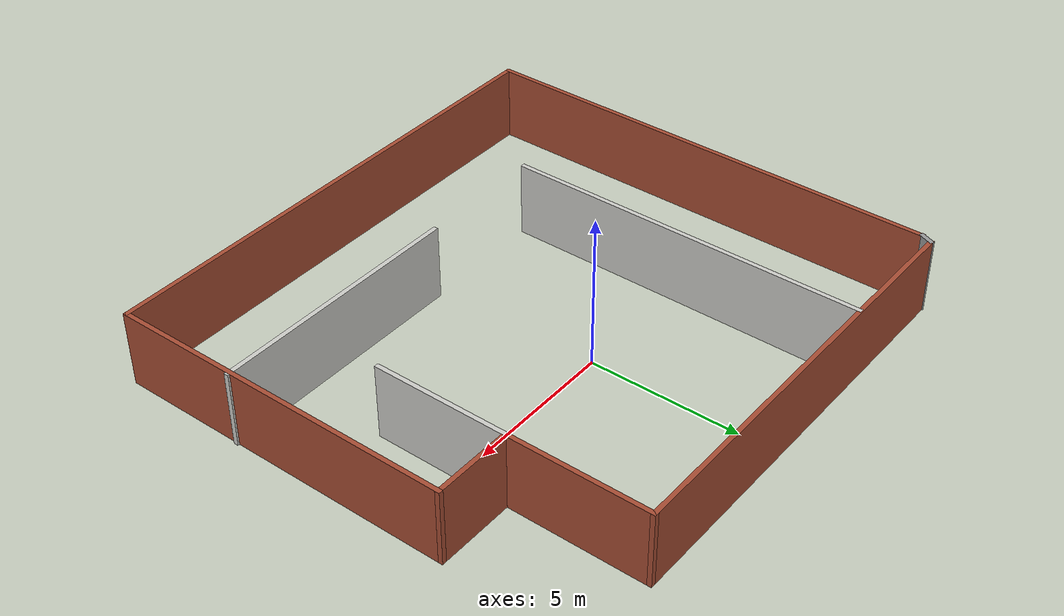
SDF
<?xml version='1.0'?>
<sdf version='1.6'>
  <model name='gcamp_small_building'>
    <pose frame=''>0.222583 -1.69696 0 0 -0 0</pose>
    <link name='Wall_11'>
      <collision name='Wall_11_Collision'>
        <geometry>
          <box>
            <size>12 0.15 2.5</size>
          </box>
        </geometry>
        <pose frame=''>0 0 1.25 0 -0 0</pose>
      </collision>
      <visual name='Wall_11_Visual'>
        <pose frame=''>0 0 1.25 0 -0 0</pose>
        <geometry>
          <box>
            <size>12 0.15 2.5</size>
          </box>
        </geometry>
        <material>
          <script>
            <uri>file://media/materials/scripts/gazebo.material</uri>
            <name>Gazebo/CeilingTiled</name>
          </script>
          <ambient>1 1 1 1</ambient>
        </material>
        <meta>
          <layer>0</layer>
        </meta>
      </visual>
      <pose frame=''>-4.16991 2.00561 0 0 -0 -1.5708</pose>
    </link>
    <link name='Wall_13'>
      <collision name='Wall_13_Collision'>
        <geometry>
          <box>
            <size>8.5 0.15 2.5</size>
          </box>
        </geometry>
        <pose frame=''>0 0 1.25 0 -0 0</pose>
      </collision>
      <visual name='Wall_13_Visual'>
        <pose frame=''>0 0 1.25 0 -0 0</pose>
        <geometry>
          <box>
            <size>8.5 0.15 2.5</size>
          </box>
        </geometry>
        <material>
          <script>
            <uri>file://media/materials/scripts/gazebo.material</uri>
            <name>Gazebo/CeilingTiled</name>
          </script>
          <ambient>1 1 1 1</ambient>
        </material>
        <meta>
          <layer>0</layer>
        </meta>
      </visual>
      <pose frame=''>4.29338 -3.92287 0 0 -0 0</pose>
    </link>
    <link name='Wall_15'>
      <collision name='Wall_15_Collision'>
        <geometry>
          <box>
            <size>4.5 0.15 2.5</size>
          </box>
        </geometry>
        <pose frame=''>0 0 1.25 0 -0 0</pose>
      </collision>
      <visual name='Wall_15_Visual'>
        <pose frame=''>0 0 1.25 0 -0 0</pose>
        <geometry>
          <box>
            <size>4.5 0.15 2.5</size>
          </box>
        </geometry>
        <material>
          <script>
            <uri>file://media/materials/scripts/gazebo.material</uri>
            <name>Gazebo/CeilingTiled</name>
          </script>
          <ambient>1 1 1 1</ambient>
        </material>
        <meta>
          <layer>0</layer>
        </meta>
      </visual>
      <pose frame=''>5.8051 1.18826 0 0 -0 -1.5708</pose>
    </link>
    <link name='Wall_3'>
      <collision name='Wall_3_Collision'>
        <geometry>
          <box>
            <size>15.75 0.15 2.5</size>
          </box>
        </geometry>
        <pose frame=''>0 0 1.25 0 -0 0</pose>
      </collision>
      <visual name='Wall_3_Visual'>
        <pose frame=''>0 0 1.25 0 -0 0</pose>
        <geometry>
          <box>
            <size>15.75 0.15 2.5</size>
          </box>
        </geometry>
        <material>
          <script>
            <uri>file://media/materials/scripts/gazebo.material</uri>
            <name>Gazebo/Bricks</name>
          </script>
          <ambient>1 1 1 1</ambient>
        </material>
        <meta>
          <layer>0</layer>
        </meta>
      </visual>
      <pose frame=''>-8.4449 -0.18674 0 0 -0 -1.5708</pose>
    </link>
    <link name='Wall_4'>
      <collision name='Wall_4_Collision'>
        <geometry>
          <box>
            <size>17 0.15 2.5</size>
          </box>
        </geometry>
        <pose frame=''>0 0 1.25 0 -0 0</pose>
      </collision>
      <visual name='Wall_4_Visual'>
        <pose frame=''>0 0 1.25 0 -0 0</pose>
        <geometry>
          <box>
            <size>17 0.15 2.5</size>
          </box>
        </geometry>
        <material>
          <script>
            <uri>file://media/materials/scripts/gazebo.material</uri>
            <name>Gazebo/Bricks</name>
          </script>
          <ambient>1 1 1 1</ambient>
        </material>
        <meta>
          <layer>0</layer>
        </meta>
      </visual>
      <pose frame=''>-0.019899 -7.98674 0 0 -0 0</pose>
    </link>
    <link name='Wall_5'>
      <collision name='Wall_5_Collision'>
        <geometry>
          <box>
            <size>11.5 0.15 2.5</size>
          </box>
        </geometry>
        <pose frame=''>0 0 1.25 0 -0 0</pose>
      </collision>
      <visual name='Wall_5_Visual'>
        <pose frame=''>0 0 1.25 0 -0 0</pose>
        <geometry>
          <box>
            <size>11.5 0.15 2.5</size>
          </box>
        </geometry>
        <material>
          <script>
            <uri>file://media/materials/scripts/gazebo.material</uri>
            <name>Gazebo/Bricks</name>
          </script>
          <ambient>1 1 1 1</ambient>
        </material>
        <meta>
          <layer>0</layer>
        </meta>
      </visual>
      <pose frame=''>8.4051 -2.31174 0 0 -0 1.5708</pose>
    </link>
    <link name='Wall_6'>
      <collision name='Wall_6_Collision'>
        <geometry>
          <box>
            <size>2.75 0.15 2.5</size>
          </box>
        </geometry>
        <pose frame=''>0 0 1.25 0 -0 0</pose>
      </collision>
      <visual name='Wall_6_Visual'>
        <pose frame=''>0 0 1.25 0 -0 0</pose>
        <geometry>
          <box>
            <size>2.75 0.15 2.5</size>
          </box>
        </geometry>
        <material>
          <script>
            <uri>file://media/materials/scripts/gazebo.material</uri>
            <name>Gazebo/Bricks</name>
          </script>
          <ambient>1 1 1 1</ambient>
        </material>
        <meta>
          <layer>0</layer>
        </meta>
      </visual>
      <pose frame=''>7.1051 3.36326 0 0 -0 3.14159</pose>
    </link>
    <link name='Wall_7'>
      <collision name='Wall_7_Collision'>
        <geometry>
          <box>
            <size>4.75 0.15 2.5</size>
          </box>
        </geometry>
        <pose frame=''>0 0 1.25 0 -0 0</pose>
      </collision>
      <visual name='Wall_7_Visual'>
        <pose frame=''>0 0 1.25 0 -0 0</pose>
        <geometry>
          <box>
            <size>4.75 0.15 2.5</size>
          </box>
        </geometry>
        <material>
          <script>
            <uri>file://media/materials/scripts/gazebo.material</uri>
            <name>Gazebo/Bricks</name>
          </script>
          <ambient>1 1 1 1</ambient>
        </material>
        <meta>
          <layer>0</layer>
        </meta>
      </visual>
      <pose frame=''>5.8051 5.66326 0 0 -0 1.5708</pose>
    </link>
    <link name='Wall_8'>
      <collision name='Wall_8_Collision'>
        <geometry>
          <box>
            <size>14.25 0.15 2.5</size>
          </box>
        </geometry>
        <pose frame=''>0 0 1.25 0 -0 0</pose>
      </collision>
      <visual name='Wall_8_Visual'>
        <pose frame=''>0 0 1.25 0 -0 0</pose>
        <geometry>
          <box>
            <size>14.25 0.15 2.5</size>
          </box>
        </geometry>
        <material>
          <script>
            <uri>file://media/materials/scripts/gazebo.material</uri>
            <name>Gazebo/Bricks</name>
          </script>
          <ambient>1 1 1 1</ambient>
        </material>
        <meta>
          <layer>0</layer>
        </meta>
      </visual>
      <pose frame=''>-1.2449 7.96326 0 0 -0 3.14159</pose>
    </link>
    <link name='Wall_9'>
      <collision name='Wall_9_Collision'>
        <geometry>
          <box>
            <size>0.530789 0.15 2.5</size>
          </box>
        </geometry>
        <pose frame=''>0 0 1.25 0 -0 0</pose>
      </collision>
      <visual name='Wall_9_Visual'>
        <pose frame=''>0 0 1.25 0 -0 0</pose>
        <geometry>
          <box>
            <size>0.530789 0.15 2.5</size>
          </box>
        </geometry>
        <material>
          <script>
            <uri>file://media/materials/scripts/gazebo.material</uri>
            <name>Gazebo/Grey</name>
          </script>
          <ambient>1 1 1 1</ambient>
        </material>
        <meta>
          <layer>0</layer>
        </meta>
      </visual>
      <pose frame=''>-8.3699 7.78826 0 0 -0 -1.97569</pose>
    </link>
    <static>1</static>
  </model>
</sdf>
